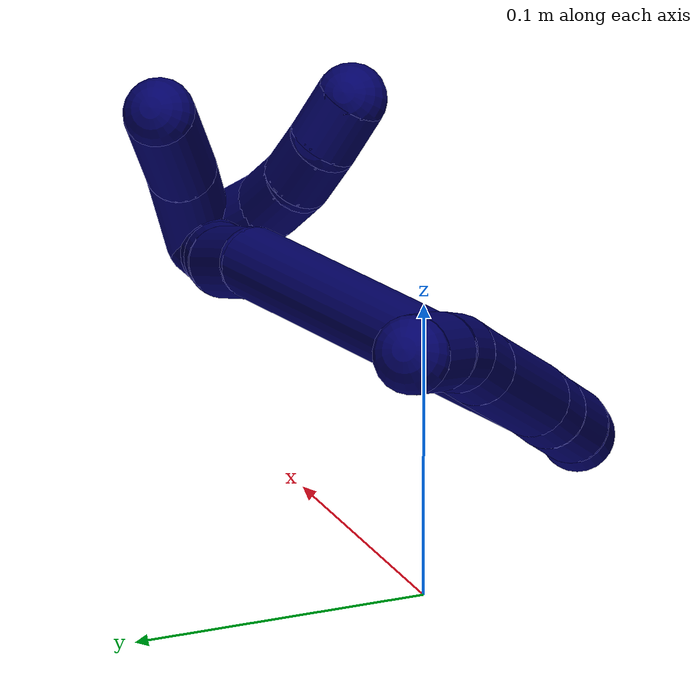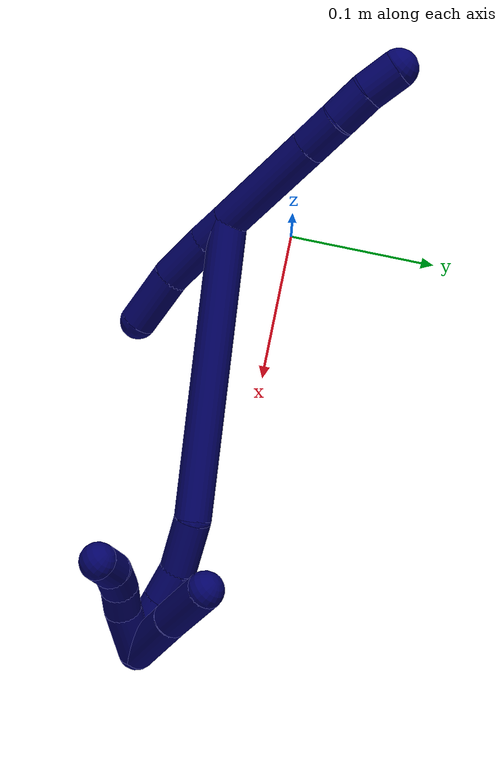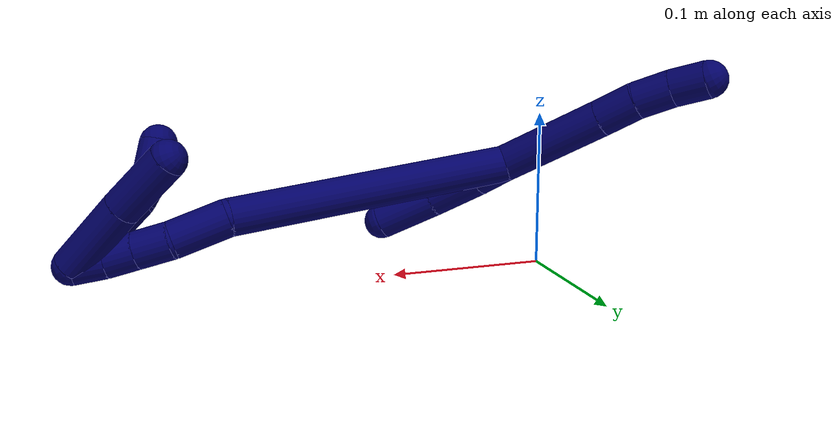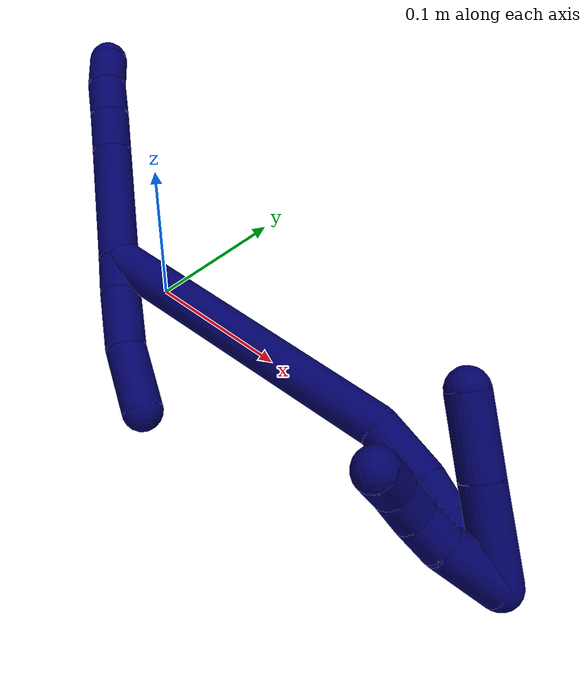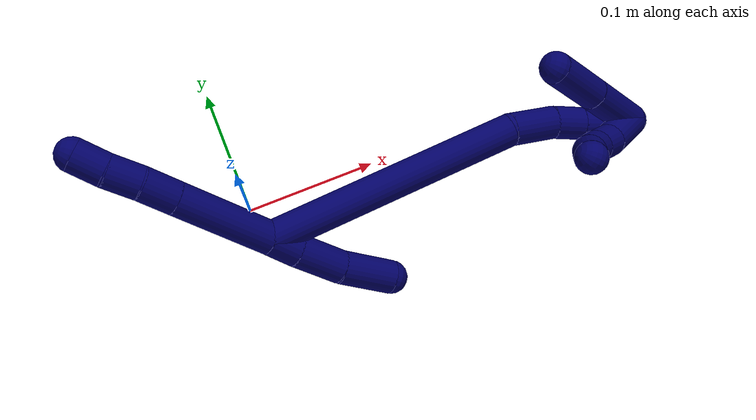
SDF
<sdf version="1.7">
 <world name="default">
  <model name="7">
   <static>0</static>
   <link name="7">
    <collision name="collision-cylinder-e_1_2_8">
     <pose>0.001058 0.000558 0.037403 -0.014906 0.02827 -0.000211</pose>
     <geometry><cylinder><radius>0.0125</radius><length>0.074843</length></cylinder></geometry>
     <surface>
      <friction><ode><mu>1.16</mu><mu2>1.16</mu2><slip1>0</slip1><slip2>0</slip2></ode></friction>
      <contact><ode><kp>1e+06</kp><kd>1</kd><max_vel>0</max_vel><min_depth>0.001</min_depth></ode></contact>
     </surface>
    </collision>
    <visual name="visual-cylinder-e_1_2_8">
     <pose>0.001058 0.000558 0.037403 -0.014906 0.02827 -0.000211</pose>
     <geometry><cylinder><radius>0.0125</radius><length>0.074843</length></cylinder></geometry>
     <material><ambient>0.003922 0 0.403922 1</ambient></material>
    </visual>
    <collision name="collision-cylinder-e_2_8_9">
     <pose>0.002609 0.001155 0.088097 -0.002974 0.037093 -5.5e-05</pose>
     <geometry><cylinder><radius>0.0125</radius><length>0.026603</length></cylinder></geometry>
     <surface>
      <friction><ode><mu>1.16</mu><mu2>1.16</mu2><slip1>0</slip1><slip2>0</slip2></ode></friction>
      <contact><ode><kp>1e+06</kp><kd>1</kd><max_vel>0</max_vel><min_depth>0.001</min_depth></ode></contact>
     </surface>
    </collision>
    <visual name="visual-cylinder-e_2_8_9">
     <pose>0.002609 0.001155 0.088097 -0.002974 0.037093 -5.5e-05</pose>
     <geometry><cylinder><radius>0.0125</radius><length>0.026603</length></cylinder></geometry>
     <material><ambient>0.003922 0 0.403922 1</ambient></material>
    </visual>
    <collision name="collision-cylinder-e_3_9_10">
     <pose>0.002375 0.002386 0.113721 -0.096384 -0.058582 0.002826</pose>
     <geometry><cylinder><radius>0.0125</radius><length>0.02482</length></cylinder></geometry>
     <surface>
      <friction><ode><mu>1.16</mu><mu2>1.16</mu2><slip1>0</slip1><slip2>0</slip2></ode></friction>
      <contact><ode><kp>1e+06</kp><kd>1</kd><max_vel>0</max_vel><min_depth>0.001</min_depth></ode></contact>
     </surface>
    </collision>
    <visual name="visual-cylinder-e_3_9_10">
     <pose>0.002375 0.002386 0.113721 -0.096384 -0.058582 0.002826</pose>
     <geometry><cylinder><radius>0.0125</radius><length>0.02482</length></cylinder></geometry>
     <material><ambient>0.003922 0 0.403922 1</ambient></material>
    </visual>
    <collision name="collision-cylinder-e_4_10_6">
     <pose>0.001549 0.006183 0.137629 -0.221307 -0.008428 0.000936</pose>
     <geometry><cylinder><radius>0.0125</radius><length>0.023734</length></cylinder></geometry>
     <surface>
      <friction><ode><mu>1.16</mu><mu2>1.16</mu2><slip1>0</slip1><slip2>0</slip2></ode></friction>
      <contact><ode><kp>1e+06</kp><kd>1</kd><max_vel>0</max_vel><min_depth>0.001</min_depth></ode></contact>
     </surface>
    </collision>
    <visual name="visual-cylinder-e_4_10_6">
     <pose>0.001549 0.006183 0.137629 -0.221307 -0.008428 0.000936</pose>
     <geometry><cylinder><radius>0.0125</radius><length>0.023734</length></cylinder></geometry>
     <material><ambient>0.003922 0 0.403922 1</ambient></material>
    </visual>
    <collision name="collision-cylinder-e_1_2_11">
     <pose>-0.000736 0.000124 -0.011087 -3.13044 -0.066273 2.80832</pose>
     <geometry><cylinder><radius>0.0125</radius><length>0.022225</length></cylinder></geometry>
     <surface>
      <friction><ode><mu>1.16</mu><mu2>1.16</mu2><slip1>0</slip1><slip2>0</slip2></ode></friction>
      <contact><ode><kp>1e+06</kp><kd>1</kd><max_vel>0</max_vel><min_depth>0.001</min_depth></ode></contact>
     </surface>
    </collision>
    <visual name="visual-cylinder-e_1_2_11">
     <pose>-0.000736 0.000124 -0.011087 -3.13044 -0.066273 2.80832</pose>
     <geometry><cylinder><radius>0.0125</radius><length>0.022225</length></cylinder></geometry>
     <material><ambient>0.003922 0 0.403922 1</ambient></material>
    </visual>
    <collision name="collision-cylinder-e_2_11_12">
     <pose>-0.001507 0.000219 -0.040564 3.14003 -0.001933 -1.78084</pose>
     <geometry><cylinder><radius>0.0125</radius><length>0.036778</length></cylinder></geometry>
     <surface>
      <friction><ode><mu>1.16</mu><mu2>1.16</mu2><slip1>0</slip1><slip2>0</slip2></ode></friction>
      <contact><ode><kp>1e+06</kp><kd>1</kd><max_vel>0</max_vel><min_depth>0.001</min_depth></ode></contact>
     </surface>
    </collision>
    <visual name="visual-cylinder-e_2_11_12">
     <pose>-0.001507 0.000219 -0.040564 3.14003 -0.001933 -1.78084</pose>
     <geometry><cylinder><radius>0.0125</radius><length>0.036778</length></cylinder></geometry>
     <material><ambient>0.003922 0 0.403922 1</ambient></material>
    </visual>
    <collision name="collision-cylinder-e_3_12_5">
     <pose>0.001455 0.001278 -0.079202 -3.08789 0.146762 -2.44104</pose>
     <geometry><cylinder><radius>0.0125</radius><length>0.040997</length></cylinder></geometry>
     <surface>
      <friction><ode><mu>1.16</mu><mu2>1.16</mu2><slip1>0</slip1><slip2>0</slip2></ode></friction>
      <contact><ode><kp>1e+06</kp><kd>1</kd><max_vel>0</max_vel><min_depth>0.001</min_depth></ode></contact>
     </surface>
    </collision>
    <visual name="visual-cylinder-e_3_12_5">
     <pose>0.001455 0.001278 -0.079202 -3.08789 0.146762 -2.44104</pose>
     <geometry><cylinder><radius>0.0125</radius><length>0.040997</length></cylinder></geometry>
     <material><ambient>0.003922 0 0.403922 1</ambient></material>
    </visual>
    <collision name="collision-cylinder-e_1_2_13">
     <pose>0.069083 0.015008 -0.068343 -2.92542 0.779007 -2.62472</pose>
     <geometry><cylinder><radius>0.0125</radius><length>0.196657</length></cylinder></geometry>
     <surface>
      <friction><ode><mu>1.16</mu><mu2>1.16</mu2><slip1>0</slip1><slip2>0</slip2></ode></friction>
      <contact><ode><kp>1e+06</kp><kd>1</kd><max_vel>0</max_vel><min_depth>0.001</min_depth></ode></contact>
     </surface>
    </collision>
    <visual name="visual-cylinder-e_1_2_13">
     <pose>0.069083 0.015008 -0.068343 -2.92542 0.779007 -2.62472</pose>
     <geometry><cylinder><radius>0.0125</radius><length>0.196657</length></cylinder></geometry>
     <material><ambient>0.003922 0 0.403922 1</ambient></material>
    </visual>
    <collision name="collision-cylinder-e_2_13_14">
     <pose>0.14693 0.033935 -0.152918 -2.90471 0.483334 -2.24205</pose>
     <geometry><cylinder><radius>0.0125</radius><length>0.037716</length></cylinder></geometry>
     <surface>
      <friction><ode><mu>1.16</mu><mu2>1.16</mu2><slip1>0</slip1><slip2>0</slip2></ode></friction>
      <contact><ode><kp>1e+06</kp><kd>1</kd><max_vel>0</max_vel><min_depth>0.001</min_depth></ode></contact>
     </surface>
    </collision>
    <visual name="visual-cylinder-e_2_13_14">
     <pose>0.14693 0.033935 -0.152918 -2.90471 0.483334 -2.24205</pose>
     <geometry><cylinder><radius>0.0125</radius><length>0.037716</length></cylinder></geometry>
     <material><ambient>0.003922 0 0.403922 1</ambient></material>
    </visual>
    <collision name="collision-cylinder-e_3_14_15">
     <pose>0.159916 0.038151 -0.180134 -3.11456 0.366795 -2.99609</pose>
     <geometry><cylinder><radius>0.0125</radius><length>0.023543</length></cylinder></geometry>
     <surface>
      <friction><ode><mu>1.16</mu><mu2>1.16</mu2><slip1>0</slip1><slip2>0</slip2></ode></friction>
      <contact><ode><kp>1e+06</kp><kd>1</kd><max_vel>0</max_vel><min_depth>0.001</min_depth></ode></contact>
     </surface>
    </collision>
    <visual name="visual-cylinder-e_3_14_15">
     <pose>0.159916 0.038151 -0.180134 -3.11456 0.366795 -2.99609</pose>
     <geometry><cylinder><radius>0.0125</radius><length>0.023543</length></cylinder></geometry>
     <material><ambient>0.003922 0 0.403922 1</ambient></material>
    </visual>
    <collision name="collision-cylinder-e_4_15_16">
     <pose>0.167885 0.038719 -0.20084 -3.11373 0.367828 -2.99207</pose>
     <geometry><cylinder><radius>0.0125</radius><length>0.020843</length></cylinder></geometry>
     <surface>
      <friction><ode><mu>1.16</mu><mu2>1.16</mu2><slip1>0</slip1><slip2>0</slip2></ode></friction>
      <contact><ode><kp>1e+06</kp><kd>1</kd><max_vel>0</max_vel><min_depth>0.001</min_depth></ode></contact>
     </surface>
    </collision>
    <visual name="visual-cylinder-e_4_15_16">
     <pose>0.167885 0.038719 -0.20084 -3.11373 0.367828 -2.99207</pose>
     <geometry><cylinder><radius>0.0125</radius><length>0.020843</length></cylinder></geometry>
     <material><ambient>0.003922 0 0.403922 1</ambient></material>
    </visual>
    <collision name="collision-cylinder-e_5_16_1">
     <pose>0.177448 0.039389 -0.219438 -3.09662 0.579479 -2.99102</pose>
     <geometry><cylinder><radius>0.0125</radius><length>0.02124</length></cylinder></geometry>
     <surface>
      <friction><ode><mu>1.16</mu><mu2>1.16</mu2><slip1>0</slip1><slip2>0</slip2></ode></friction>
      <contact><ode><kp>1e+06</kp><kd>1</kd><max_vel>0</max_vel><min_depth>0.001</min_depth></ode></contact>
     </surface>
    </collision>
    <visual name="visual-cylinder-e_5_16_1">
     <pose>0.177448 0.039389 -0.219438 -3.09662 0.579479 -2.99102</pose>
     <geometry><cylinder><radius>0.0125</radius><length>0.02124</length></cylinder></geometry>
     <material><ambient>0.003922 0 0.403922 1</ambient></material>
    </visual>
    <collision name="collision-cylinder-e_1_1_17">
     <pose>0.174891 0.026915 -0.216774 0.839923 -0.450927 -0.204122</pose>
     <geometry><cylinder><radius>0.0125</radius><length>0.03842</length></cylinder></geometry>
     <surface>
      <friction><ode><mu>1.16</mu><mu2>1.16</mu2><slip1>0</slip1><slip2>0</slip2></ode></friction>
      <contact><ode><kp>1e+06</kp><kd>1</kd><max_vel>0</max_vel><min_depth>0.001</min_depth></ode></contact>
     </surface>
    </collision>
    <visual name="visual-cylinder-e_1_1_17">
     <pose>0.174891 0.026915 -0.216774 0.839923 -0.450927 -0.204122</pose>
     <geometry><cylinder><radius>0.0125</radius><length>0.03842</length></cylinder></geometry>
     <material><ambient>0.003922 0 0.403922 1</ambient></material>
    </visual>
    <collision name="collision-cylinder-e_2_17_18">
     <pose>0.163392 0.007412 -0.197664 0.71934 -0.301371 -0.114065</pose>
     <geometry><cylinder><radius>0.0125</radius><length>0.021071</length></cylinder></geometry>
     <surface>
      <friction><ode><mu>1.16</mu><mu2>1.16</mu2><slip1>0</slip1><slip2>0</slip2></ode></friction>
      <contact><ode><kp>1e+06</kp><kd>1</kd><max_vel>0</max_vel><min_depth>0.001</min_depth></ode></contact>
     </surface>
    </collision>
    <visual name="visual-cylinder-e_2_17_18">
     <pose>0.163392 0.007412 -0.197664 0.71934 -0.301371 -0.114065</pose>
     <geometry><cylinder><radius>0.0125</radius><length>0.021071</length></cylinder></geometry>
     <material><ambient>0.003922 0 0.403922 1</ambient></material>
    </visual>
    <collision name="collision-cylinder-e_3_18_19">
     <pose>0.159072 -0.007 -0.183647 0.878884 -0.117475 -0.055275</pose>
     <geometry><cylinder><radius>0.0125</radius><length>0.020356</length></cylinder></geometry>
     <surface>
      <friction><ode><mu>1.16</mu><mu2>1.16</mu2><slip1>0</slip1><slip2>0</slip2></ode></friction>
      <contact><ode><kp>1e+06</kp><kd>1</kd><max_vel>0</max_vel><min_depth>0.001</min_depth></ode></contact>
     </surface>
    </collision>
    <visual name="visual-cylinder-e_3_18_19">
     <pose>0.159072 -0.007 -0.183647 0.878884 -0.117475 -0.055275</pose>
     <geometry><cylinder><radius>0.0125</radius><length>0.020356</length></cylinder></geometry>
     <material><ambient>0.003922 0 0.403922 1</ambient></material>
    </visual>
    <collision name="collision-cylinder-e_4_19_4">
     <pose>0.157998 -0.024062 -0.17327 1.17024 0.011759 0.00779</pose>
     <geometry><cylinder><radius>0.0125</radius><length>0.020153</length></cylinder></geometry>
     <surface>
      <friction><ode><mu>1.16</mu><mu2>1.16</mu2><slip1>0</slip1><slip2>0</slip2></ode></friction>
      <contact><ode><kp>1e+06</kp><kd>1</kd><max_vel>0</max_vel><min_depth>0.001</min_depth></ode></contact>
     </surface>
    </collision>
    <visual name="visual-cylinder-e_4_19_4">
     <pose>0.157998 -0.024062 -0.17327 1.17024 0.011759 0.00779</pose>
     <geometry><cylinder><radius>0.0125</radius><length>0.020153</length></cylinder></geometry>
     <material><ambient>0.003922 0 0.403922 1</ambient></material>
    </visual>
    <collision name="collision-cylinder-e_1_1_20">
     <pose>0.187008 0.031683 -0.20265 0.305922 0.138267 0.021349</pose>
     <geometry><cylinder><radius>0.0125</radius><length>0.054347</length></cylinder></geometry>
     <surface>
      <friction><ode><mu>1.16</mu><mu2>1.16</mu2><slip1>0</slip1><slip2>0</slip2></ode></friction>
      <contact><ode><kp>1e+06</kp><kd>1</kd><max_vel>0</max_vel><min_depth>0.001</min_depth></ode></contact>
     </surface>
    </collision>
    <visual name="visual-cylinder-e_1_1_20">
     <pose>0.187008 0.031683 -0.20265 0.305922 0.138267 0.021349</pose>
     <geometry><cylinder><radius>0.0125</radius><length>0.054347</length></cylinder></geometry>
     <material><ambient>0.003922 0 0.403922 1</ambient></material>
    </visual>
    <collision name="collision-cylinder-e_2_20_3">
     <pose>0.193819 0.017855 -0.155102 0.255721 0.134695 0.017343</pose>
     <geometry><cylinder><radius>0.0125</radius><length>0.045653</length></cylinder></geometry>
     <surface>
      <friction><ode><mu>1.16</mu><mu2>1.16</mu2><slip1>0</slip1><slip2>0</slip2></ode></friction>
      <contact><ode><kp>1e+06</kp><kd>1</kd><max_vel>0</max_vel><min_depth>0.001</min_depth></ode></contact>
     </surface>
    </collision>
    <visual name="visual-cylinder-e_2_20_3">
     <pose>0.193819 0.017855 -0.155102 0.255721 0.134695 0.017343</pose>
     <geometry><cylinder><radius>0.0125</radius><length>0.045653</length></cylinder></geometry>
     <material><ambient>0.003922 0 0.403922 1</ambient></material>
    </visual>
    <collision name="collision-sphere-3">
     <pose>0.196884 0.012134 -0.133218 0 -0 0</pose>
     <geometry><sphere><radius>0.0125</radius></sphere></geometry>
     <surface>
      <friction><ode><mu>1.16</mu><mu2>1.16</mu2><slip1>0</slip1><slip2>0</slip2></ode></friction>
      <contact><ode><kp>1e+06</kp><kd>1</kd><max_vel>0</max_vel><min_depth>0.001</min_depth></ode></contact>
     </surface>
    </collision>
    <visual name="visual-sphere-3">
     <pose>0.196884 0.012134 -0.133218 0 -0 0</pose>
     <geometry><sphere><radius>0.0125</radius></sphere></geometry>
     <material><ambient>0.003922 0 0.403922 1</ambient></material>
    </visual>
    <collision name="collision-sphere-20">
     <pose>0.190754 0.023577 -0.176986 0 -0 0</pose>
     <geometry><sphere><radius>0.0125</radius></sphere></geometry>
     <surface>
      <friction><ode><mu>1.16</mu><mu2>1.16</mu2><slip1>0</slip1><slip2>0</slip2></ode></friction>
      <contact><ode><kp>1e+06</kp><kd>1</kd><max_vel>0</max_vel><min_depth>0.001</min_depth></ode></contact>
     </surface>
    </collision>
    <visual name="visual-sphere-20">
     <pose>0.190754 0.023577 -0.176986 0 -0 0</pose>
     <geometry><sphere><radius>0.0125</radius></sphere></geometry>
     <material><ambient>0.003922 0 0.403922 1</ambient></material>
    </visual>
    <collision name="collision-sphere-4">
     <pose>0.158116 -0.03334 -0.169341 0 -0 0</pose>
     <geometry><sphere><radius>0.0125</radius></sphere></geometry>
     <surface>
      <friction><ode><mu>1.16</mu><mu2>1.16</mu2><slip1>0</slip1><slip2>0</slip2></ode></friction>
      <contact><ode><kp>1e+06</kp><kd>1</kd><max_vel>0</max_vel><min_depth>0.001</min_depth></ode></contact>
     </surface>
    </collision>
    <visual name="visual-sphere-4">
     <pose>0.158116 -0.03334 -0.169341 0 -0 0</pose>
     <geometry><sphere><radius>0.0125</radius></sphere></geometry>
     <material><ambient>0.003922 0 0.403922 1</ambient></material>
    </visual>
    <collision name="collision-sphere-11">
     <pose>-0.001472 0.000247 -0.022175 0 -0 0</pose>
     <geometry><sphere><radius>0.0125</radius></sphere></geometry>
     <surface>
      <friction><ode><mu>1.16</mu><mu2>1.16</mu2><slip1>0</slip1><slip2>0</slip2></ode></friction>
      <contact><ode><kp>1e+06</kp><kd>1</kd><max_vel>0</max_vel><min_depth>0.001</min_depth></ode></contact>
     </surface>
    </collision>
    <visual name="visual-sphere-11">
     <pose>-0.001472 0.000247 -0.022175 0 -0 0</pose>
     <geometry><sphere><radius>0.0125</radius></sphere></geometry>
     <material><ambient>0.003922 0 0.403922 1</ambient></material>
    </visual>
    <collision name="collision-sphere-6">
     <pose>0.001449 0.008788 0.149206 0 -0 0</pose>
     <geometry><sphere><radius>0.0125</radius></sphere></geometry>
     <surface>
      <friction><ode><mu>1.16</mu><mu2>1.16</mu2><slip1>0</slip1><slip2>0</slip2></ode></friction>
      <contact><ode><kp>1e+06</kp><kd>1</kd><max_vel>0</max_vel><min_depth>0.001</min_depth></ode></contact>
     </surface>
    </collision>
    <visual name="visual-sphere-6">
     <pose>0.001449 0.008788 0.149206 0 -0 0</pose>
     <geometry><sphere><radius>0.0125</radius></sphere></geometry>
     <material><ambient>0.003922 0 0.403922 1</ambient></material>
    </visual>
    <collision name="collision-sphere-10">
     <pose>0.001649 0.003579 0.126052 0 -0 0</pose>
     <geometry><sphere><radius>0.0125</radius></sphere></geometry>
     <surface>
      <friction><ode><mu>1.16</mu><mu2>1.16</mu2><slip1>0</slip1><slip2>0</slip2></ode></friction>
      <contact><ode><kp>1e+06</kp><kd>1</kd><max_vel>0</max_vel><min_depth>0.001</min_depth></ode></contact>
     </surface>
    </collision>
    <visual name="visual-sphere-10">
     <pose>0.001649 0.003579 0.126052 0 -0 0</pose>
     <geometry><sphere><radius>0.0125</radius></sphere></geometry>
     <material><ambient>0.003922 0 0.403922 1</ambient></material>
    </visual>
    <collision name="collision-sphere-9">
     <pose>0.003102 0.001194 0.10139 0 -0 0</pose>
     <geometry><sphere><radius>0.0125</radius></sphere></geometry>
     <surface>
      <friction><ode><mu>1.16</mu><mu2>1.16</mu2><slip1>0</slip1><slip2>0</slip2></ode></friction>
      <contact><ode><kp>1e+06</kp><kd>1</kd><max_vel>0</max_vel><min_depth>0.001</min_depth></ode></contact>
     </surface>
    </collision>
    <visual name="visual-sphere-9">
     <pose>0.003102 0.001194 0.10139 0 -0 0</pose>
     <geometry><sphere><radius>0.0125</radius></sphere></geometry>
     <material><ambient>0.003922 0 0.403922 1</ambient></material>
    </visual>
    <collision name="collision-sphere-2">
     <geometry><sphere><radius>0.0125</radius></sphere></geometry>
     <surface>
      <friction><ode><mu>1.16</mu><mu2>1.16</mu2><slip1>0</slip1><slip2>0</slip2></ode></friction>
      <contact><ode><kp>1e+06</kp><kd>1</kd><max_vel>0</max_vel><min_depth>0.001</min_depth></ode></contact>
     </surface>
    </collision>
    <visual name="visual-sphere-2">
     <geometry><sphere><radius>0.0125</radius></sphere></geometry>
     <material><ambient>0.003922 0 0.403922 1</ambient></material>
    </visual>
    <collision name="collision-sphere-19">
     <pose>0.157879 -0.014784 -0.177198 0 -0 0</pose>
     <geometry><sphere><radius>0.0125</radius></sphere></geometry>
     <surface>
      <friction><ode><mu>1.16</mu><mu2>1.16</mu2><slip1>0</slip1><slip2>0</slip2></ode></friction>
      <contact><ode><kp>1e+06</kp><kd>1</kd><max_vel>0</max_vel><min_depth>0.001</min_depth></ode></contact>
     </surface>
    </collision>
    <visual name="visual-sphere-19">
     <pose>0.157879 -0.014784 -0.177198 0 -0 0</pose>
     <geometry><sphere><radius>0.0125</radius></sphere></geometry>
     <material><ambient>0.003922 0 0.403922 1</ambient></material>
    </visual>
    <collision name="collision-sphere-8">
     <pose>0.002116 0.001115 0.074805 0 -0 0</pose>
     <geometry><sphere><radius>0.0125</radius></sphere></geometry>
     <surface>
      <friction><ode><mu>1.16</mu><mu2>1.16</mu2><slip1>0</slip1><slip2>0</slip2></ode></friction>
      <contact><ode><kp>1e+06</kp><kd>1</kd><max_vel>0</max_vel><min_depth>0.001</min_depth></ode></contact>
     </surface>
    </collision>
    <visual name="visual-sphere-8">
     <pose>0.002116 0.001115 0.074805 0 -0 0</pose>
     <geometry><sphere><radius>0.0125</radius></sphere></geometry>
     <material><ambient>0.003922 0 0.403922 1</ambient></material>
    </visual>
    <collision name="collision-sphere-12">
     <pose>-0.001543 0.00019 -0.058953 0 -0 0</pose>
     <geometry><sphere><radius>0.0125</radius></sphere></geometry>
     <surface>
      <friction><ode><mu>1.16</mu><mu2>1.16</mu2><slip1>0</slip1><slip2>0</slip2></ode></friction>
      <contact><ode><kp>1e+06</kp><kd>1</kd><max_vel>0</max_vel><min_depth>0.001</min_depth></ode></contact>
     </surface>
    </collision>
    <visual name="visual-sphere-12">
     <pose>-0.001543 0.00019 -0.058953 0 -0 0</pose>
     <geometry><sphere><radius>0.0125</radius></sphere></geometry>
     <material><ambient>0.003922 0 0.403922 1</ambient></material>
    </visual>
    <collision name="collision-sphere-5">
     <pose>0.004452 0.002367 -0.099451 0 -0 0</pose>
     <geometry><sphere><radius>0.0125</radius></sphere></geometry>
     <surface>
      <friction><ode><mu>1.16</mu><mu2>1.16</mu2><slip1>0</slip1><slip2>0</slip2></ode></friction>
      <contact><ode><kp>1e+06</kp><kd>1</kd><max_vel>0</max_vel><min_depth>0.001</min_depth></ode></contact>
     </surface>
    </collision>
    <visual name="visual-sphere-5">
     <pose>0.004452 0.002367 -0.099451 0 -0 0</pose>
     <geometry><sphere><radius>0.0125</radius></sphere></geometry>
     <material><ambient>0.003922 0 0.403922 1</ambient></material>
    </visual>
    <collision name="collision-sphere-13">
     <pose>0.138166 0.030017 -0.136686 0 -0 0</pose>
     <geometry><sphere><radius>0.0125</radius></sphere></geometry>
     <surface>
      <friction><ode><mu>1.16</mu><mu2>1.16</mu2><slip1>0</slip1><slip2>0</slip2></ode></friction>
      <contact><ode><kp>1e+06</kp><kd>1</kd><max_vel>0</max_vel><min_depth>0.001</min_depth></ode></contact>
     </surface>
    </collision>
    <visual name="visual-sphere-13">
     <pose>0.138166 0.030017 -0.136686 0 -0 0</pose>
     <geometry><sphere><radius>0.0125</radius></sphere></geometry>
     <material><ambient>0.003922 0 0.403922 1</ambient></material>
    </visual>
    <collision name="collision-sphere-14">
     <pose>0.155694 0.037854 -0.16915 0 -0 0</pose>
     <geometry><sphere><radius>0.0125</radius></sphere></geometry>
     <surface>
      <friction><ode><mu>1.16</mu><mu2>1.16</mu2><slip1>0</slip1><slip2>0</slip2></ode></friction>
      <contact><ode><kp>1e+06</kp><kd>1</kd><max_vel>0</max_vel><min_depth>0.001</min_depth></ode></contact>
     </surface>
    </collision>
    <visual name="visual-sphere-14">
     <pose>0.155694 0.037854 -0.16915 0 -0 0</pose>
     <geometry><sphere><radius>0.0125</radius></sphere></geometry>
     <material><ambient>0.003922 0 0.403922 1</ambient></material>
    </visual>
    <collision name="collision-sphere-15">
     <pose>0.164137 0.038448 -0.191119 0 -0 0</pose>
     <geometry><sphere><radius>0.0125</radius></sphere></geometry>
     <surface>
      <friction><ode><mu>1.16</mu><mu2>1.16</mu2><slip1>0</slip1><slip2>0</slip2></ode></friction>
      <contact><ode><kp>1e+06</kp><kd>1</kd><max_vel>0</max_vel><min_depth>0.001</min_depth></ode></contact>
     </surface>
    </collision>
    <visual name="visual-sphere-15">
     <pose>0.164137 0.038448 -0.191119 0 -0 0</pose>
     <geometry><sphere><radius>0.0125</radius></sphere></geometry>
     <material><ambient>0.003922 0 0.403922 1</ambient></material>
    </visual>
    <collision name="collision-sphere-16">
     <pose>0.171632 0.03899 -0.21056 0 -0 0</pose>
     <geometry><sphere><radius>0.0125</radius></sphere></geometry>
     <surface>
      <friction><ode><mu>1.16</mu><mu2>1.16</mu2><slip1>0</slip1><slip2>0</slip2></ode></friction>
      <contact><ode><kp>1e+06</kp><kd>1</kd><max_vel>0</max_vel><min_depth>0.001</min_depth></ode></contact>
     </surface>
    </collision>
    <visual name="visual-sphere-16">
     <pose>0.171632 0.03899 -0.21056 0 -0 0</pose>
     <geometry><sphere><radius>0.0125</radius></sphere></geometry>
     <material><ambient>0.003922 0 0.403922 1</ambient></material>
    </visual>
    <collision name="collision-sphere-1">
     <pose>0.183263 0.039789 -0.228315 0 -0 0</pose>
     <geometry><sphere><radius>0.0125</radius></sphere></geometry>
     <surface>
      <friction><ode><mu>1.16</mu><mu2>1.16</mu2><slip1>0</slip1><slip2>0</slip2></ode></friction>
      <contact><ode><kp>1e+06</kp><kd>1</kd><max_vel>0</max_vel><min_depth>0.001</min_depth></ode></contact>
     </surface>
    </collision>
    <visual name="visual-sphere-1">
     <pose>0.183263 0.039789 -0.228315 0 -0 0</pose>
     <geometry><sphere><radius>0.0125</radius></sphere></geometry>
     <material><ambient>0.003922 0 0.403922 1</ambient></material>
    </visual>
    <collision name="collision-sphere-18">
     <pose>0.160265 0.000783 -0.190096 0 -0 0</pose>
     <geometry><sphere><radius>0.0125</radius></sphere></geometry>
     <surface>
      <friction><ode><mu>1.16</mu><mu2>1.16</mu2><slip1>0</slip1><slip2>0</slip2></ode></friction>
      <contact><ode><kp>1e+06</kp><kd>1</kd><max_vel>0</max_vel><min_depth>0.001</min_depth></ode></contact>
     </surface>
    </collision>
    <visual name="visual-sphere-18">
     <pose>0.160265 0.000783 -0.190096 0 -0 0</pose>
     <geometry><sphere><radius>0.0125</radius></sphere></geometry>
     <material><ambient>0.003922 0 0.403922 1</ambient></material>
    </visual>
    <collision name="collision-sphere-17">
     <pose>0.16652 0.014041 -0.205232 0 -0 0</pose>
     <geometry><sphere><radius>0.0125</radius></sphere></geometry>
     <surface>
      <friction><ode><mu>1.16</mu><mu2>1.16</mu2><slip1>0</slip1><slip2>0</slip2></ode></friction>
      <contact><ode><kp>1e+06</kp><kd>1</kd><max_vel>0</max_vel><min_depth>0.001</min_depth></ode></contact>
     </surface>
    </collision>
    <visual name="visual-sphere-17">
     <pose>0.16652 0.014041 -0.205232 0 -0 0</pose>
     <geometry><sphere><radius>0.0125</radius></sphere></geometry>
     <material><ambient>0.003922 0 0.403922 1</ambient></material>
    </visual>
    <inertial>
     <pose>0.087985 0.01362 -0.085156 0 -0 0</pose>
     <mass>0.75</mass>
     <inertia>
      <ixx>-0.00056</ixx>
      <ixy>0</ixy>
      <ixz>0</ixz>
      <iyy>0.000442</iyy>
      <iyz>0</iyz>
      <izz>-0.000546</izz>
     </inertia>
    </inertial>
   </link>
   <pose>0.006835 -0.040898 0.059021 -0.99225 -0.514436 0.60526</pose>
  </model>
 </world>
</sdf>
